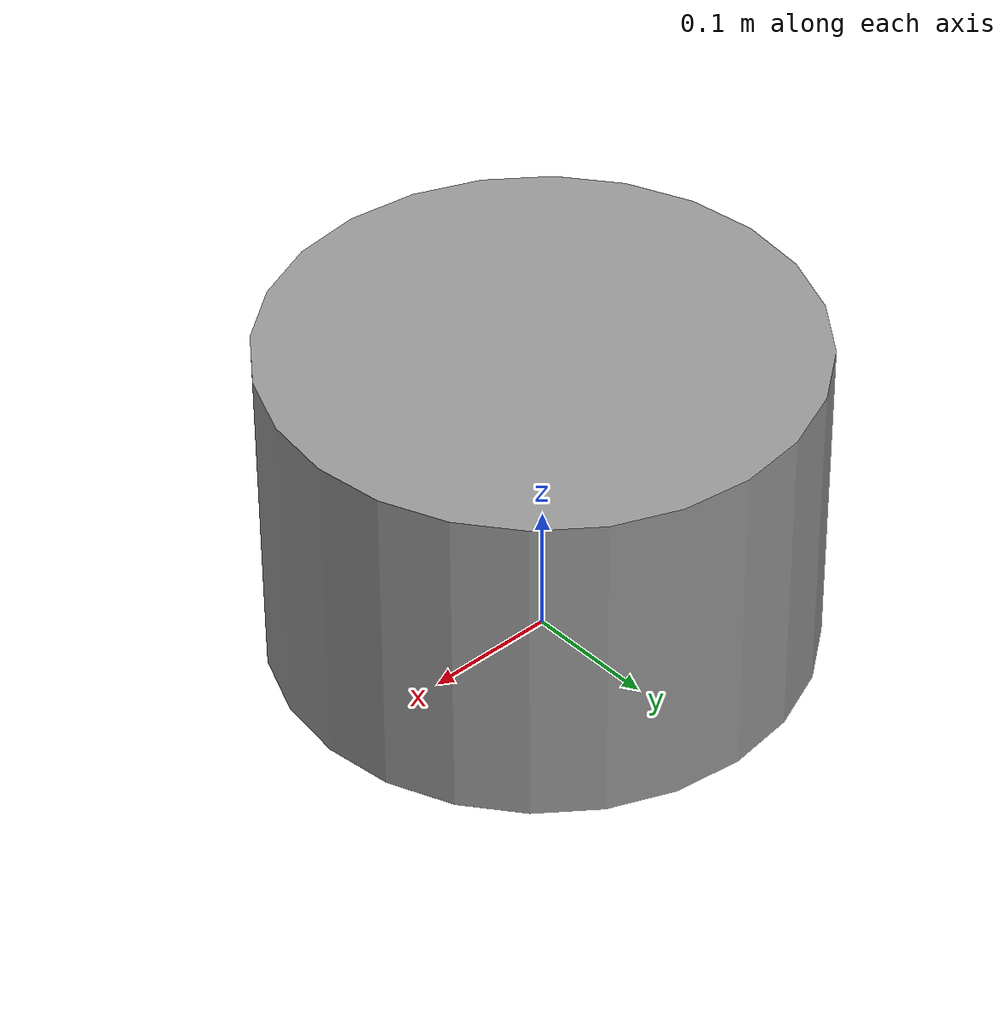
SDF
<?xml version='1.0'?>
<sdf version='1.7'>
  <model name='lidar_stand'>
    <link name='link'>
      <inertial>
        <mass>0.69</mass>
        <inertia>
          <ixx>0.145833</ixx>
          <ixy>0</ixy>
          <ixz>0</ixz>
          <iyy>0.145833</iyy>
          <iyz>0</iyz>
          <izz>0.125</izz>
        </inertia>
        <pose>0 0 0.125 0 -0 0</pose>
      </inertial>
      <self_collide>0</self_collide>
      <enable_wind>0</enable_wind>
      <kinematic>0</kinematic>
      <pose>0 0 0 0 -0 0</pose>
      <gravity>1</gravity>
      <visual name='visual'>
        <geometry>
          <cylinder>
            <radius>0.2</radius>
            <length>0.25</length>
          </cylinder>
        </geometry>
        <material>
          <script>
            <name>Gazebo/Grey</name>
            <uri>file://media/materials/scripts/gazebo.material</uri>
          </script>
          <shader type='pixel'>
            <normal_map>__default__</normal_map>
          </shader>
          <ambient>0.3 0.3 0.3 1</ambient>
          <diffuse>0.7 0.7 0.7 1</diffuse>
          <specular>0.01 0.01 0.01 1</specular>
          <emissive>0 0 0 1</emissive>
        </material>
        <pose>0 0 0.125 0 -0 0</pose>
        <transparency>0</transparency>
        <cast_shadows>1</cast_shadows>
      </visual>
      <collision name='collision'>
        <laser_retro>0</laser_retro>
        <max_contacts>10</max_contacts>
        <pose>0 0 0.125 0 -0 0</pose>
        <geometry>
          <cylinder>
            <radius>0.2</radius>
            <length>0.25</length>
          </cylinder>
        </geometry>
        <surface>
          <friction>
            <ode>
              <mu>1</mu>
              <mu2>1</mu2>
              <fdir1>0 0 0</fdir1>
              <slip1>0</slip1>
              <slip2>0</slip2>
            </ode>
            <torsional>
              <coefficient>1</coefficient>
              <patch_radius>0</patch_radius>
              <surface_radius>0</surface_radius>
              <use_patch_radius>1</use_patch_radius>
              <ode>
                <slip>0</slip>
              </ode>
            </torsional>
          </friction>
          <bounce>
            <restitution_coefficient>0</restitution_coefficient>
            <threshold>1e+06</threshold>
          </bounce>
          <contact>
            <collide_without_contact>0</collide_without_contact>
            <collide_without_contact_bitmask>1</collide_without_contact_bitmask>
            <collide_bitmask>1</collide_bitmask>
            <ode>
              <soft_cfm>0</soft_cfm>
              <soft_erp>0.2</soft_erp>
              <kp>1e+13</kp>
              <kd>1</kd>
              <max_vel>0.01</max_vel>
              <min_depth>0</min_depth>
            </ode>
            <bullet>
              <split_impulse>1</split_impulse>
              <split_impulse_penetration_threshold>-0.01</split_impulse_penetration_threshold>
              <soft_cfm>0</soft_cfm>
              <soft_erp>0.2</soft_erp>
              <kp>1e+13</kp>
              <kd>1</kd>
            </bullet>
          </contact>
        </surface>
      </collision>
      <sensor type="ray" name="laser">
	<pose>0.3048 -0.3048 0.18 0 0 2.70</pose>
        <visualize>false</visualize>
        <update_rate>10</update_rate>
        <ray>
          <scan>
            <horizontal>
             <samples>1599</samples>
              <resolution>1</resolution>
              <min_angle>-3.14159265</min_angle>
              <max_angle>3.14159265</max_angle>
            </horizontal>
          </scan>
          <range>
            <min>0.2</min>
            <max>12.0</max>
            <resolution>0.01</resolution>
          </range>
          <noise>
            <type>gaussian</type>
            <mean>0.0</mean>
            <stddev>0.01</stddev>
          </noise>
        </ray>
        <plugin name="gazebo_ros_head_rplidar_controller" filename="libgazebo_ros_laser.so">
          <topicName>/raw_scan</topicName>
          <frameName>laser</frameName>
        </plugin>
      </sensor>
    </link>
    <static>0</static>
    <allow_auto_disable>1</allow_auto_disable>
  </model>
</sdf>
